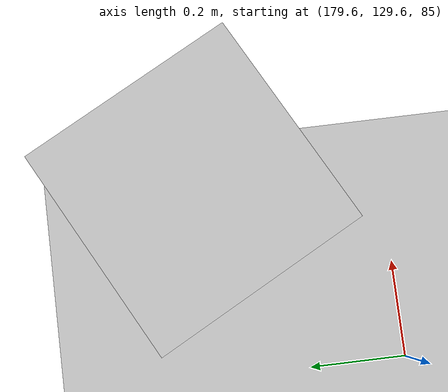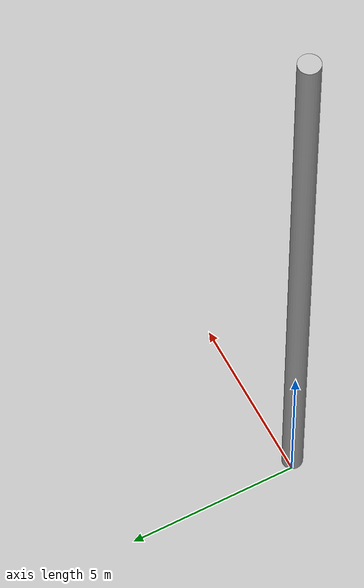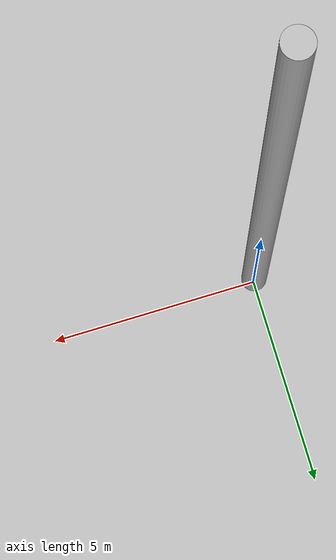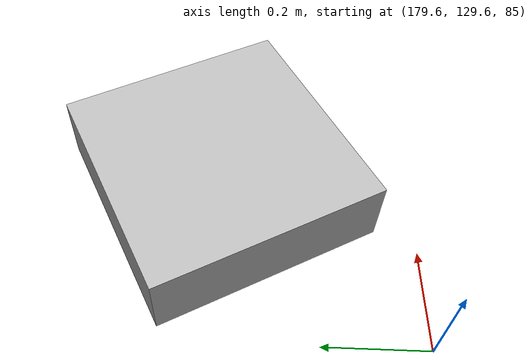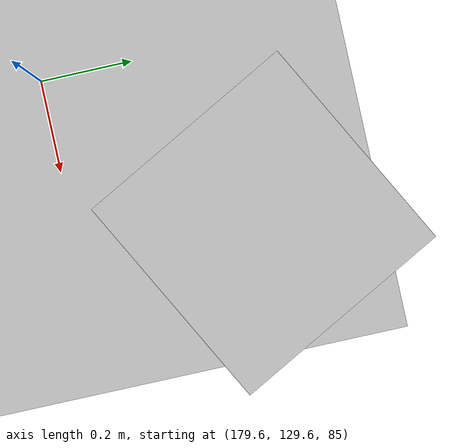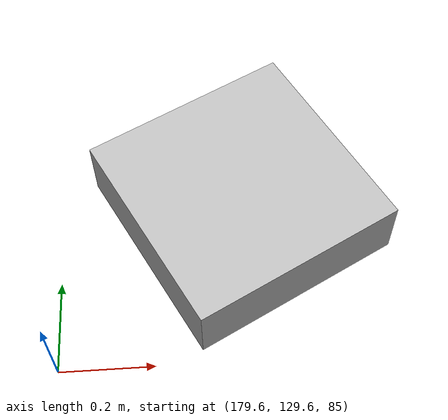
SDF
<?xml version="1.0"?>
<sdf version="1.9">
  <world name="spectra_demo">
    <gravity>0 0 -9.80665</gravity>
    <physics name="default_physics" type="dart">
      <max_step_size>0.001</max_step_size>
      <real_time_factor>1.0</real_time_factor>
    </physics>
    <plugin filename="gz-sim-physics-system" name="gz::sim::systems::Physics"/>
    <plugin filename="gz-sim-scene-broadcaster-system" name="gz::sim::systems::SceneBroadcaster"/>

    <model name="ground">
      <static>true</static>
      <link name="link">
        <collision name="collision"><geometry><box><size>1000 1000 1</size></box></geometry></collision>
        <visual name="visual"><geometry><box><size>1000 1000 1</size></box></geometry></visual>
      </link>
    </model>

    <model name="mimo_site_01">
      <static>true</static>
      <pose>0 0 10 0 0 0</pose>
      <link name="mast">
        <visual name="visual"><geometry><cylinder><radius>0.3</radius><length>20</length></cylinder></geometry></visual>
      </link>
    </model>

    <model name="drone_01">
      <static>true</static>
      <pose>180 130 85 0 0 0.49</pose>
      <link name="body">
        <inertial><mass>1.8</mass><inertia><ixx>0.03</ixx><iyy>0.03</iyy><izz>0.05</izz></inertia></inertial>
        <collision name="collision"><geometry><box><size>0.5 0.5 0.15</size></box></geometry></collision>
        <visual name="visual"><geometry><box><size>0.5 0.5 0.15</size></box></geometry></visual>
      </link>
    </model>
  </world>
</sdf>
